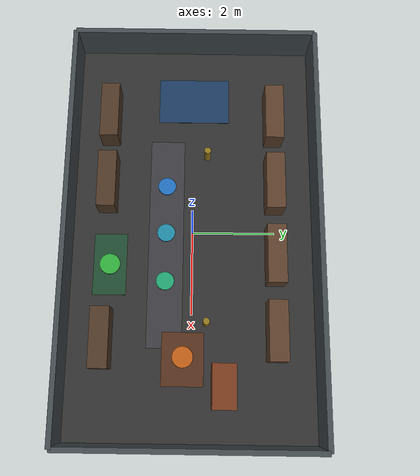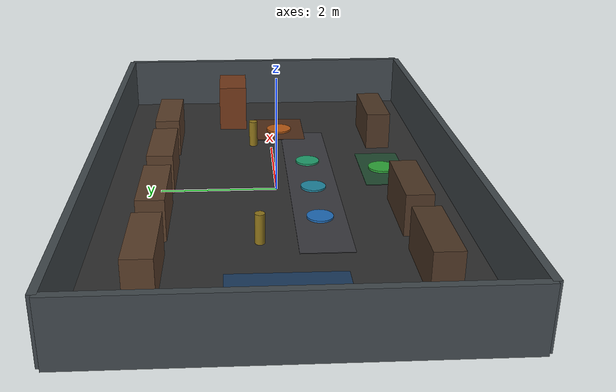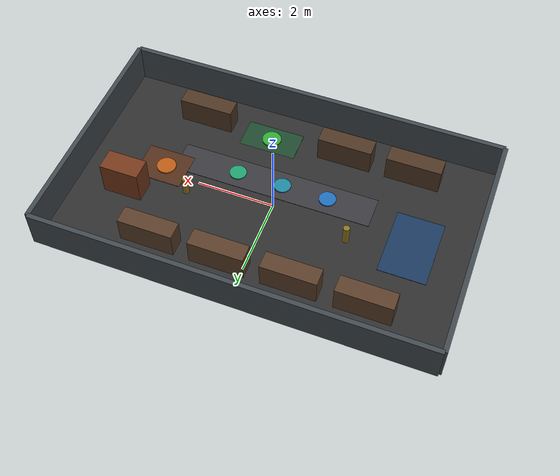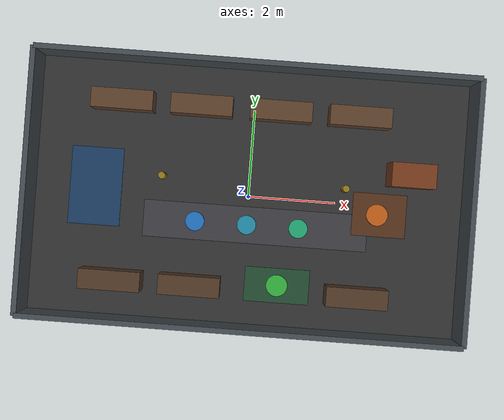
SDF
<?xml version="1.0" ?>
<sdf version="1.6">
  <world name="queue_warehouse_world">

    <physics type="ode">
      <max_step_size>0.001</max_step_size>
      <real_time_factor>1.0</real_time_factor>
      <real_time_update_rate>1000</real_time_update_rate>
    </physics>

    <scene>
      <ambient>0.35 0.35 0.35 1</ambient>
      <background>0.05 0.06 0.07 1</background>
      <shadows>true</shadows>
    </scene>

    <light name="main_light" type="directional">
      <pose>0 0 8 0 0 0</pose>
      <diffuse>0.8 0.8 0.8 1</diffuse>
      <specular>0.2 0.2 0.2 1</specular>
      <direction>-0.4 0.3 -1</direction>
    </light>

    <!-- Ground -->
    <model name="dark_ground">
      <static>true</static>
      <pose>0 0 -0.01 0 0 0</pose>
      <link name="link">
        <collision name="collision">
          <geometry>
            <box>
              <size>10.0 6.0 0.02</size>
            </box>
          </geometry>
        </collision>
        <visual name="visual">
          <geometry>
            <box>
              <size>10.0 6.0 0.02</size>
            </box>
          </geometry>
          <material>
            <ambient>0.18 0.18 0.18 1</ambient>
            <diffuse>0.18 0.18 0.18 1</diffuse>
          </material>
        </visual>
      </link>
    </model>

    <!-- Perimeter walls -->
    <model name="wall_north">
      <static>true</static>
      <pose>0 3.0 0.5 0 0 0</pose>
      <link name="link">
        <collision name="collision"><geometry><box><size>10.0 0.12 1.0</size></box></geometry></collision>
        <visual name="visual"><geometry><box><size>10.0 0.12 1.0</size></box></geometry><material><ambient>0.25 0.28 0.30 1</ambient><diffuse>0.25 0.28 0.30 1</diffuse></material></visual>
      </link>
    </model>

    <model name="wall_south">
      <static>true</static>
      <pose>0 -3.0 0.5 0 0 0</pose>
      <link name="link">
        <collision name="collision"><geometry><box><size>10.0 0.12 1.0</size></box></geometry></collision>
        <visual name="visual"><geometry><box><size>10.0 0.12 1.0</size></box></geometry><material><ambient>0.25 0.28 0.30 1</ambient><diffuse>0.25 0.28 0.30 1</diffuse></material></visual>
      </link>
    </model>

    <model name="wall_west">
      <static>true</static>
      <pose>-5.0 0 0.5 0 0 0</pose>
      <link name="link">
        <collision name="collision"><geometry><box><size>0.12 6.0 1.0</size></box></geometry></collision>
        <visual name="visual"><geometry><box><size>0.12 6.0 1.0</size></box></geometry><material><ambient>0.25 0.28 0.30 1</ambient><diffuse>0.25 0.28 0.30 1</diffuse></material></visual>
      </link>
    </model>

    <model name="wall_east">
      <static>true</static>
      <pose>5.0 0 0.5 0 0 0</pose>
      <link name="link">
        <collision name="collision"><geometry><box><size>0.12 6.0 1.0</size></box></geometry></collision>
        <visual name="visual"><geometry><box><size>0.12 6.0 1.0</size></box></geometry><material><ambient>0.25 0.28 0.30 1</ambient><diffuse>0.25 0.28 0.30 1</diffuse></material></visual>
      </link>
    </model>

    <!-- Visual-only floor zones. These do not block navigation. -->
    <model name="start_area_floor_marker">
      <static>true</static>
      <pose>-3.55 0.0 0.012 0 0 0</pose>
      <link name="link">
        <visual name="visual">
          <geometry><box><size>1.2 1.8 0.01</size></box></geometry>
          <material><ambient>0.10 0.22 0.36 1</ambient><diffuse>0.10 0.22 0.36 1</diffuse></material>
        </visual>
      </link>
    </model>

    <model name="queue_lane_floor_marker">
      <static>true</static>
      <pose>0.2 -0.65 0.014 0 0 0</pose>
      <link name="link">
        <visual name="visual">
          <geometry><box><size>5.2 0.85 0.01</size></box></geometry>
          <material><ambient>0.22 0.22 0.24 1</ambient><diffuse>0.22 0.22 0.24 1</diffuse></material>
        </visual>
      </link>
    </model>

    <model name="workstation_floor_marker">
      <static>true</static>
      <pose>3.05 -0.20 0.016 0 0 0</pose>
      <link name="link">
        <visual name="visual">
          <geometry><box><size>1.25 1.0 0.01</size></box></geometry>
          <material><ambient>0.32 0.18 0.10 1</ambient><diffuse>0.32 0.18 0.10 1</diffuse></material>
        </visual>
      </link>
    </model>

    <model name="exit_area_floor_marker">
      <static>true</static>
      <pose>0.8 -2.0 0.018 0 0 0</pose>
      <link name="link">
        <visual name="visual">
          <geometry><box><size>1.5 0.8 0.01</size></box></geometry>
          <material><ambient>0.12 0.28 0.18 1</ambient><diffuse>0.12 0.28 0.18 1</diffuse></material>
        </visual>
      </link>
    </model>

    <!-- Waiting point markers, visual only -->
    <model name="waiting_point_P3_marker">
      <static>true</static>
      <pose>-1.20 -0.65 0.035 0 0 0</pose>
      <link name="link">
        <visual name="visual">
          <geometry><cylinder><radius>0.22</radius><length>0.035</length></cylinder></geometry>
          <material><ambient>0.12 0.42 0.72 1</ambient><diffuse>0.12 0.42 0.72 1</diffuse></material>
        </visual>
      </link>
    </model>

    <model name="waiting_point_P2_marker">
      <static>true</static>
      <pose>0.00 -0.65 0.035 0 0 0</pose>
      <link name="link">
        <visual name="visual">
          <geometry><cylinder><radius>0.22</radius><length>0.035</length></cylinder></geometry>
          <material><ambient>0.12 0.52 0.62 1</ambient><diffuse>0.12 0.52 0.62 1</diffuse></material>
        </visual>
      </link>
    </model>

    <model name="waiting_point_P1_marker">
      <static>true</static>
      <pose>1.20 -0.65 0.035 0 0 0</pose>
      <link name="link">
        <visual name="visual">
          <geometry><cylinder><radius>0.22</radius><length>0.035</length></cylinder></geometry>
          <material><ambient>0.12 0.62 0.42 1</ambient><diffuse>0.12 0.62 0.42 1</diffuse></material>
        </visual>
      </link>
    </model>

    <model name="workstation_target_marker">
      <static>true</static>
      <pose>3.00 -0.20 0.04 0 0 0</pose>
      <link name="link">
        <visual name="visual">
          <geometry><cylinder><radius>0.25</radius><length>0.04</length></cylinder></geometry>
          <material><ambient>0.72 0.35 0.08 1</ambient><diffuse>0.72 0.35 0.08 1</diffuse></material>
        </visual>
      </link>
    </model>

    <model name="exit_target_marker">
      <static>true</static>
      <pose>0.80 -2.00 0.04 0 0 0</pose>
      <link name="link">
        <visual name="visual">
          <geometry><cylinder><radius>0.25</radius><length>0.04</length></cylinder></geometry>
          <material><ambient>0.18 0.65 0.22 1</ambient><diffuse>0.18 0.65 0.22 1</diffuse></material>
        </visual>
      </link>
    </model>

    <!-- Static shelves / obstacles. These have collision and will be seen by lidar. -->
    <model name="shelf_top_1">
      <static>true</static>
      <pose>-3.0 2.0 0.35 0 0 0</pose>
      <link name="link">
        <collision name="collision"><geometry><box><size>1.4 0.45 0.7</size></box></geometry></collision>
        <visual name="visual"><geometry><box><size>1.4 0.45 0.7</size></box></geometry><material><ambient>0.35 0.24 0.16 1</ambient><diffuse>0.35 0.24 0.16 1</diffuse></material></visual>
      </link>
    </model>

    <model name="shelf_top_2">
      <static>true</static>
      <pose>-1.2 2.0 0.35 0 0 0</pose>
      <link name="link">
        <collision name="collision"><geometry><box><size>1.4 0.45 0.7</size></box></geometry></collision>
        <visual name="visual"><geometry><box><size>1.4 0.45 0.7</size></box></geometry><material><ambient>0.35 0.24 0.16 1</ambient><diffuse>0.35 0.24 0.16 1</diffuse></material></visual>
      </link>
    </model>

    <model name="shelf_top_3">
      <static>true</static>
      <pose>0.6 2.0 0.35 0 0 0</pose>
      <link name="link">
        <collision name="collision"><geometry><box><size>1.4 0.45 0.7</size></box></geometry></collision>
        <visual name="visual"><geometry><box><size>1.4 0.45 0.7</size></box></geometry><material><ambient>0.35 0.24 0.16 1</ambient><diffuse>0.35 0.24 0.16 1</diffuse></material></visual>
      </link>
    </model>

    <model name="shelf_top_4">
      <static>true</static>
      <pose>2.4 2.0 0.35 0 0 0</pose>
      <link name="link">
        <collision name="collision"><geometry><box><size>1.4 0.45 0.7</size></box></geometry></collision>
        <visual name="visual"><geometry><box><size>1.4 0.45 0.7</size></box></geometry><material><ambient>0.35 0.24 0.16 1</ambient><diffuse>0.35 0.24 0.16 1</diffuse></material></visual>
      </link>
    </model>

    <model name="shelf_bottom_1">
      <static>true</static>
      <pose>-3.0 -2.1 0.35 0 0 0</pose>
      <link name="link">
        <collision name="collision"><geometry><box><size>1.4 0.45 0.7</size></box></geometry></collision>
        <visual name="visual"><geometry><box><size>1.4 0.45 0.7</size></box></geometry><material><ambient>0.30 0.21 0.14 1</ambient><diffuse>0.30 0.21 0.14 1</diffuse></material></visual>
      </link>
    </model>

    <model name="shelf_bottom_2">
      <static>true</static>
      <pose>-1.2 -2.1 0.35 0 0 0</pose>
      <link name="link">
        <collision name="collision"><geometry><box><size>1.4 0.45 0.7</size></box></geometry></collision>
        <visual name="visual"><geometry><box><size>1.4 0.45 0.7</size></box></geometry><material><ambient>0.30 0.21 0.14 1</ambient><diffuse>0.30 0.21 0.14 1</diffuse></material></visual>
      </link>
    </model>

    <model name="shelf_bottom_3">
      <static>true</static>
      <pose>2.6 -2.1 0.35 0 0 0</pose>
      <link name="link">
        <collision name="collision"><geometry><box><size>1.4 0.45 0.7</size></box></geometry></collision>
        <visual name="visual"><geometry><box><size>1.4 0.45 0.7</size></box></geometry><material><ambient>0.30 0.21 0.14 1</ambient><diffuse>0.30 0.21 0.14 1</diffuse></material></visual>
      </link>
    </model>

    <!-- Workstation body. Kept slightly above/right of target so the target point is reachable. -->
    <model name="workstation_body">
      <static>true</static>
      <pose>3.65 0.75 0.45 0 0 0</pose>
      <link name="link">
        <collision name="collision"><geometry><box><size>1.0 0.55 0.9</size></box></geometry></collision>
        <visual name="visual"><geometry><box><size>1.0 0.55 0.9</size></box></geometry><material><ambient>0.45 0.22 0.10 1</ambient><diffuse>0.45 0.22 0.10 1</diffuse></material></visual>
      </link>
    </model>

    <!-- Queue guide posts. These are obstacles, but kept outside the target points. -->
    <model name="queue_post_left">
      <static>true</static>
      <pose>-2.0 0.35 0.25 0 0 0</pose>
      <link name="link">
        <collision name="collision"><geometry><cylinder><radius>0.08</radius><length>0.5</length></cylinder></geometry></collision>
        <visual name="visual"><geometry><cylinder><radius>0.08</radius><length>0.5</length></cylinder></geometry><material><ambient>0.55 0.45 0.10 1</ambient><diffuse>0.55 0.45 0.10 1</diffuse></material></visual>
      </link>
    </model>

    <model name="queue_post_right">
      <static>true</static>
      <pose>2.2 0.35 0.25 0 0 0</pose>
      <link name="link">
        <collision name="collision"><geometry><cylinder><radius>0.08</radius><length>0.5</length></cylinder></geometry></collision>
        <visual name="visual"><geometry><cylinder><radius>0.08</radius><length>0.5</length></cylinder></geometry><material><ambient>0.55 0.45 0.10 1</ambient><diffuse>0.55 0.45 0.10 1</diffuse></material></visual>
      </link>
    </model>

  </world>
</sdf>
